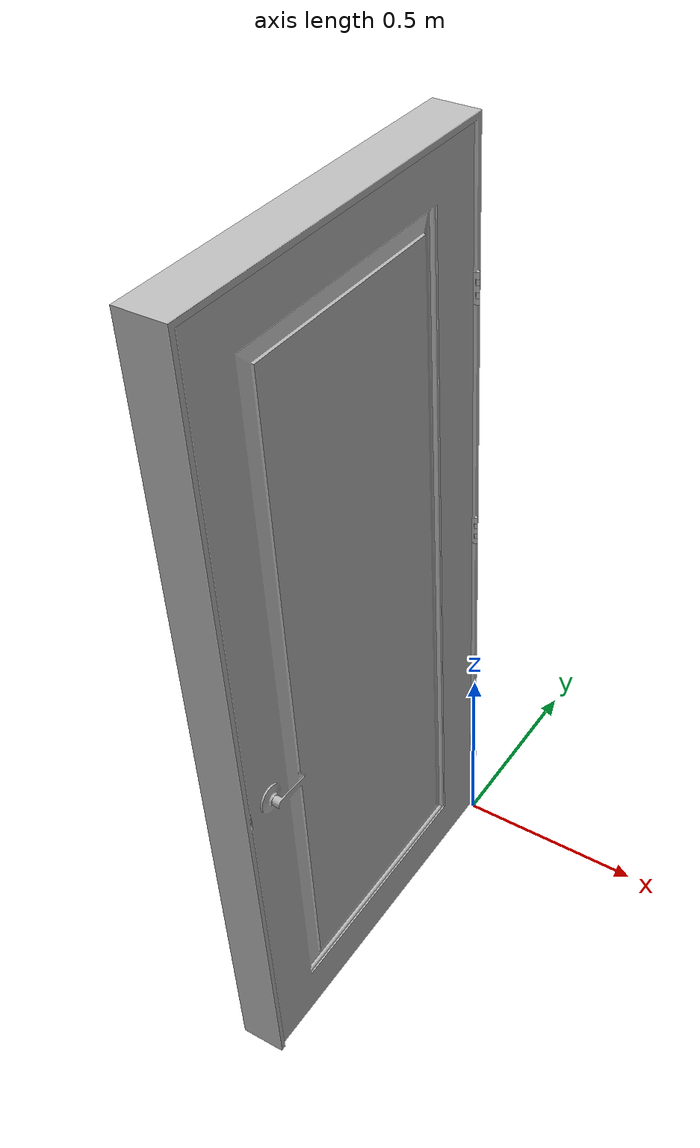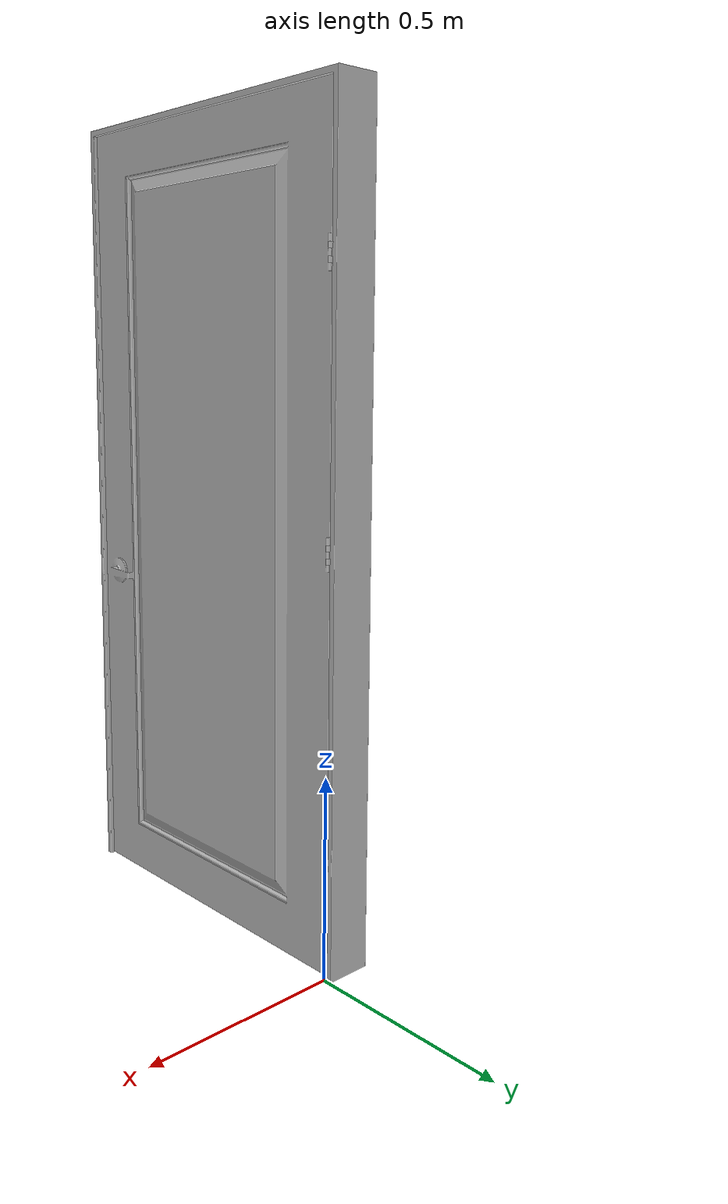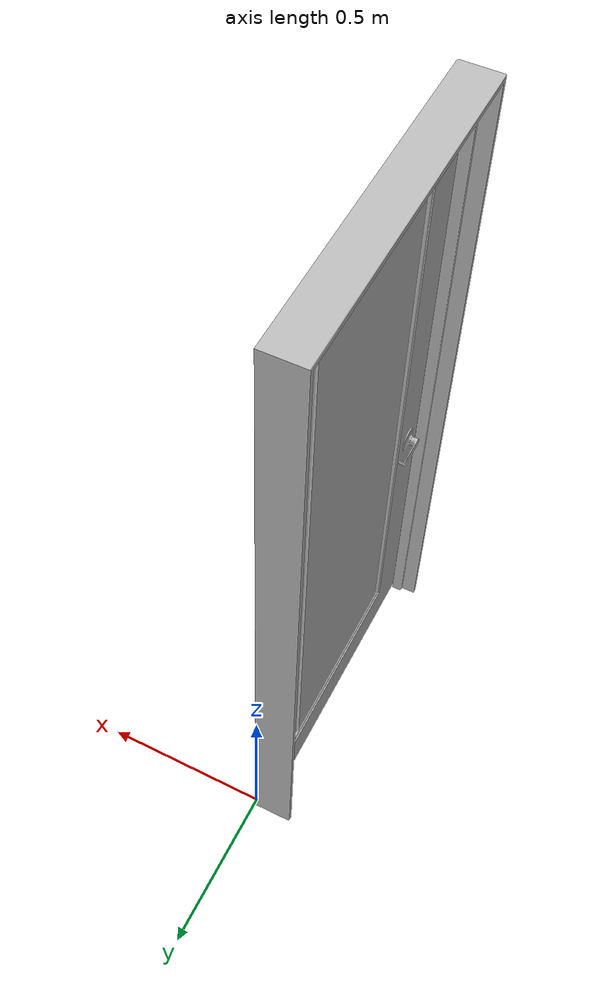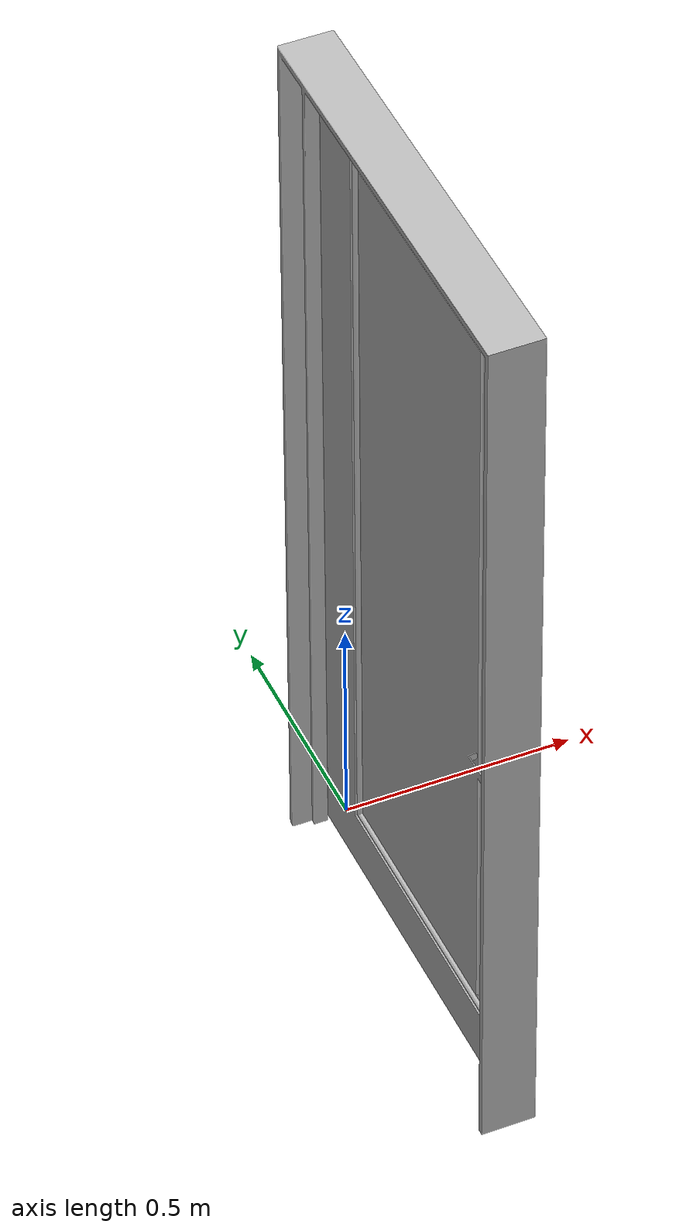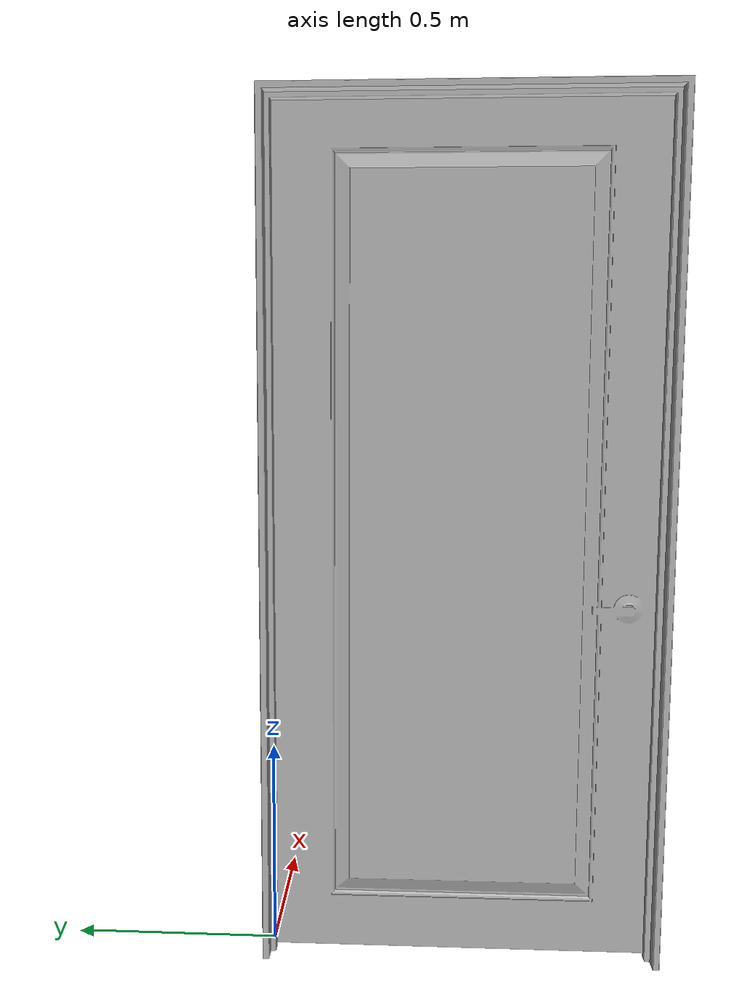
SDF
<sdf version="1.6">
	<model name="DoorHingedSingleSwingLeft_O8ab66c006110_lod0">
		<link name="frame_link">
			<pose>-0.05773424357175827 -0.45874273777008057 -0.0 0 0 0</pose>
			<visual name="visual_Door_left_frame_one_panel_wood_dark">
				<geometry>
					<mesh>
						<uri>model://DoorHingedSingleSwingLeft_O8ab66c006110_lod0/meshes/visual_Door_left_frame_one_panel_wood_dark.dae</uri>
					</mesh>
				</geometry>
				<pose>0 0 0 0 0 0</pose>
			</visual>
			<collision name="Door_left_frame_one_panel_wood_dark_Collision_05">
				<geometry>
					<mesh>
						<uri>model://DoorHingedSingleSwingLeft_O8ab66c006110_lod0/meshes/Door_left_frame_one_panel_wood_dark_Collision_05.dae</uri>
					</mesh>
				</geometry>
				<pose>0 0 0 0 0 0</pose>
				<surface>
					<contact>
						<collide_bitmask>1</collide_bitmask>
					</contact>
				</surface>
			</collision>
		</link>
		<link name="door_link">
			<pose>0 0 0 0 0 0</pose>
			<inertial>
				<mass>1.0</mass>
				<inertia>
					<ixx>0.41441923703</ixx>
					<ixy>0.0</ixy>
					<ixz>0.0</ixz>
					<iyy>0.073070729875</iyy>
					<iyz>0.0</iyz>
					<izz>0.34294104678</izz>
				</inertia>
			</inertial>
			<visual name="visual_Door_left_door_one_panel_wood_dark">
				<geometry>
					<mesh>
						<uri>model://DoorHingedSingleSwingLeft_O8ab66c006110_lod0/meshes/visual_Door_left_door_one_panel_wood_dark.dae</uri>
					</mesh>
				</geometry>
				<pose>-0.05773424357175827 -0.45874273777008057 -0.0 0 0 0</pose>
			</visual>
			<collision name="Door_left_door_one_panel_wood_dark_Collision_06">
				<geometry>
					<mesh>
						<uri>model://DoorHingedSingleSwingLeft_O8ab66c006110_lod0/meshes/Door_left_door_one_panel_wood_dark_Collision_06.dae</uri>
					</mesh>
				</geometry>
				<pose>-0.05773279070854187 -0.45874738693237305 -0.0 0 0 0</pose>
				<surface>
					<contact>
						<collide_bitmask>1</collide_bitmask>
					</contact>
				</surface>
			</collision>
		</link>
		<joint name="world_joint" type="fixed">
			<child>frame_link</child>
			<parent>world</parent>
			<axis>
				<limit>
					<lower>0</lower>
					<upper>0</upper>
				</limit>
				<xyz>0 1 0</xyz>
				<dynamics>
					<damping>1</damping>
					<spring_reference>0</spring_reference>
					<spring_stiffness>0</spring_stiffness>
				</dynamics>
			</axis>
			<physics>
				<ode>
					<cfm_damping>1</cfm_damping>
					<limit/>
					<cfm>0</cfm>
					<erp>0.2</erp>
				</ode>
			</physics>
		</joint>
		<joint name="hinge_joint" type="revolute">
			<parent>frame_link</parent>
			<child>door_link</child>
			<pose>0 0 0 0 0 0</pose>
			<axis>
				<xyz>0 0 1</xyz>
				<limit>
					<lower>0</lower>
					<upper>1.5707963267948966</upper>
				</limit>
				<dynamics>
					<damping>1</damping>
					<friction>1</friction>
					<spring_reference>0</spring_reference>
					<spring_stiffness>0</spring_stiffness>
				</dynamics>
				<use_parent_model_frame>0</use_parent_model_frame>
			</axis>
			<physics>
				<ode>
					<cfm_damping>1</cfm_damping>
					<limit>
						<cfm>0</cfm>
						<erp>0.2</erp>
					</limit>
				</ode>
			</physics>
		</joint>
	</model>
</sdf>
